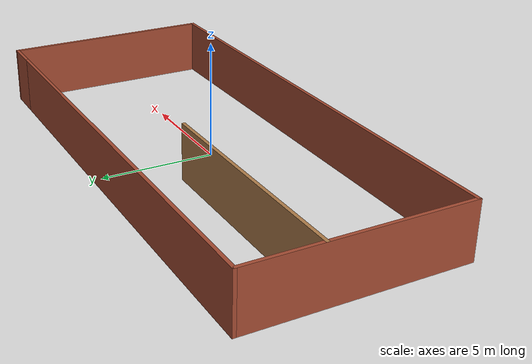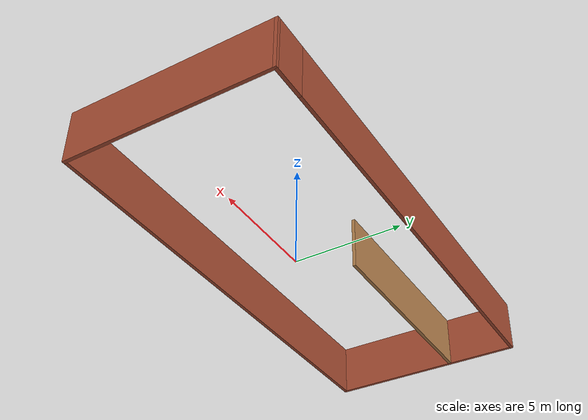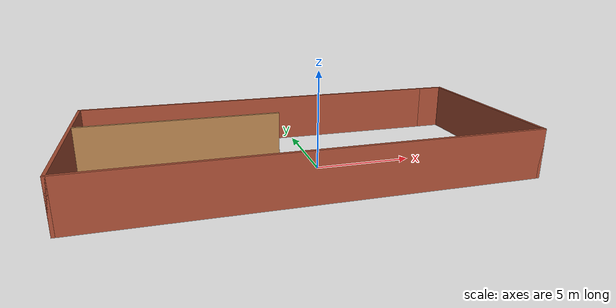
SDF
<?xml version='1.0'?>
<sdf version='1.7'>
  <model name='cafe'>
    <pose>-0.915434 0.629584 0 0 -0 0</pose>
    <link name='Wall_10'>
      <collision name='Wall_10_Collision'>
        <geometry>
          <box>
            <size>21.75 0.15 2.5</size>
          </box>
        </geometry>
        <pose>0 0 1.25 0 -0 0</pose>
      </collision>
      <visual name='Wall_10_Visual'>
        <pose>0 0 1.25 0 -0 0</pose>
        <geometry>
          <box>
            <size>21.75 0.15 2.5</size>
          </box>
        </geometry>
        <material>
          <script>
            <uri>file://media/materials/scripts/gazebo.material</uri>
            <name>Gazebo/Bricks</name>
          </script>
          <ambient>1 1 1 1</ambient>
        </material>
        <meta>
          <layer>0</layer>
        </meta>
      </visual>
      <pose>-0 -4.675 0 0 -0 0</pose>
    </link>
    <link name='Wall_11'>
      <collision name='Wall_11_Collision'>
        <geometry>
          <box>
            <size>9.5 0.15 2.5</size>
          </box>
        </geometry>
        <pose>0 0 1.25 0 -0 0</pose>
      </collision>
      <visual name='Wall_11_Visual'>
        <pose>0 0 1.25 0 -0 0</pose>
        <geometry>
          <box>
            <size>9.5 0.15 2.5</size>
          </box>
        </geometry>
        <material>
          <script>
            <uri>file://media/materials/scripts/gazebo.material</uri>
            <name>Gazebo/Bricks</name>
          </script>
          <ambient>1 1 1 1</ambient>
        </material>
        <meta>
          <layer>0</layer>
        </meta>
      </visual>
      <pose>10.8 -0 0 0 -0 1.5708</pose>
    </link>
    <link name='Wall_12'>
      <collision name='Wall_12_Collision'>
        <geometry>
          <box>
            <size>1.65 0.15 2.5</size>
          </box>
        </geometry>
        <pose>0 0 1.25 0 -0 0</pose>
      </collision>
      <visual name='Wall_12_Visual'>
        <pose>0 0 1.25 0 -0 0</pose>
        <geometry>
          <box>
            <size>1.65 0.15 2.5</size>
          </box>
        </geometry>
        <material>
          <script>
            <uri>file://media/materials/scripts/gazebo.material</uri>
            <name>Gazebo/Bricks</name>
          </script>
          <ambient>1 1 1 1</ambient>
        </material>
        <meta>
          <layer>0</layer>
        </meta>
      </visual>
      <pose>10.05 4.675 0 0 -0 3.14159</pose>
    </link>
    <link name='Wall_17'>
      <collision name='Wall_17_Collision'>
        <geometry>
          <box>
            <size>10.25 0.15 2.5</size>
          </box>
        </geometry>
        <pose>0 0 1.25 0 -0 0</pose>
      </collision>
      <visual name='Wall_17_Visual'>
        <pose>0 0 1.25 0 -0 0</pose>
        <geometry>
          <box>
            <size>10.25 0.15 2.5</size>
          </box>
        </geometry>
        <material>
          <script>
            <uri>file://media/materials/scripts/gazebo.material</uri>
            <name>Gazebo/Wood</name>
          </script>
          <ambient>1 1 1 1</ambient>
        </material>
        <meta>
          <layer>0</layer>
        </meta>
      </visual>
      <pose>-5.74783 1.40143 0 0 -0 0</pose>
    </link>
    <link name='Wall_8'>
      <collision name='Wall_8_Collision'>
        <geometry>
          <box>
            <size>20.25 0.15 2.5</size>
          </box>
        </geometry>
        <pose>0 0 1.25 0 -0 0</pose>
      </collision>
      <visual name='Wall_8_Visual'>
        <pose>0 0 1.25 0 -0 0</pose>
        <geometry>
          <box>
            <size>20.25 0.15 2.5</size>
          </box>
        </geometry>
        <material>
          <script>
            <uri>file://media/materials/scripts/gazebo.material</uri>
            <name>Gazebo/Bricks</name>
          </script>
          <ambient>1 1 1 1</ambient>
        </material>
        <meta>
          <layer>0</layer>
        </meta>
      </visual>
      <pose>-0.75 4.675 0 0 -0 3.14159</pose>
    </link>
    <link name='Wall_9'>
      <collision name='Wall_9_Collision'>
        <geometry>
          <box>
            <size>9.5 0.15 2.5</size>
          </box>
        </geometry>
        <pose>0 0 1.25 0 -0 0</pose>
      </collision>
      <visual name='Wall_9_Visual'>
        <pose>0 0 1.25 0 -0 0</pose>
        <geometry>
          <box>
            <size>9.5 0.15 2.5</size>
          </box>
        </geometry>
        <material>
          <script>
            <uri>file://media/materials/scripts/gazebo.material</uri>
            <name>Gazebo/Bricks</name>
          </script>
          <ambient>1 1 1 1</ambient>
        </material>
        <meta>
          <layer>0</layer>
        </meta>
      </visual>
      <pose>-10.8 -0 0 0 -0 -1.5708</pose>
    </link>
    <static>1</static>
  </model>
</sdf>
